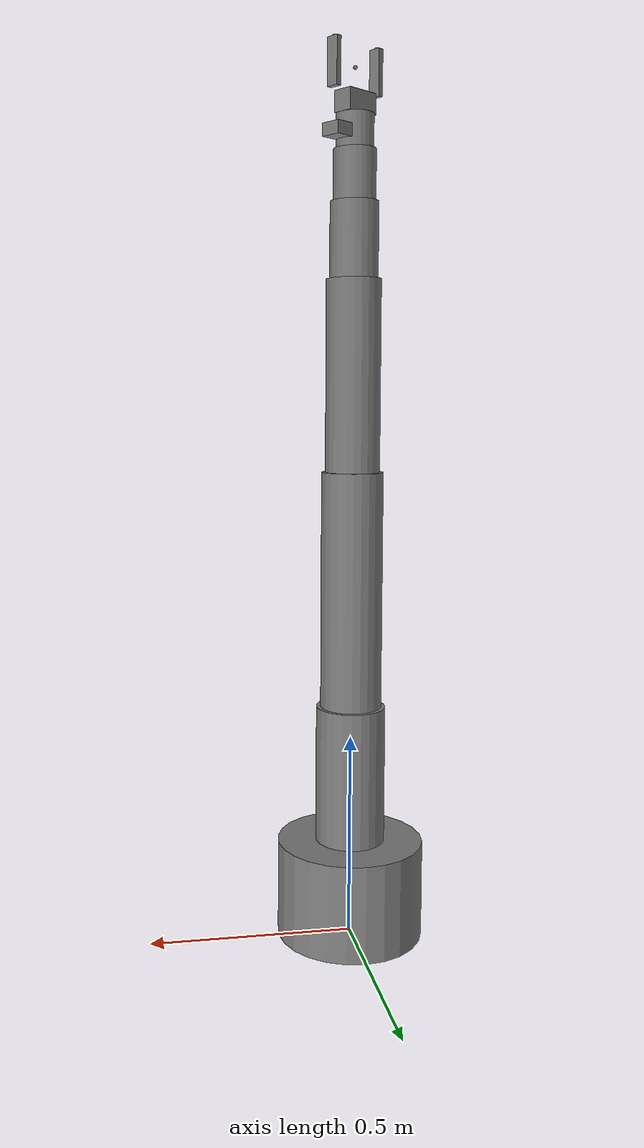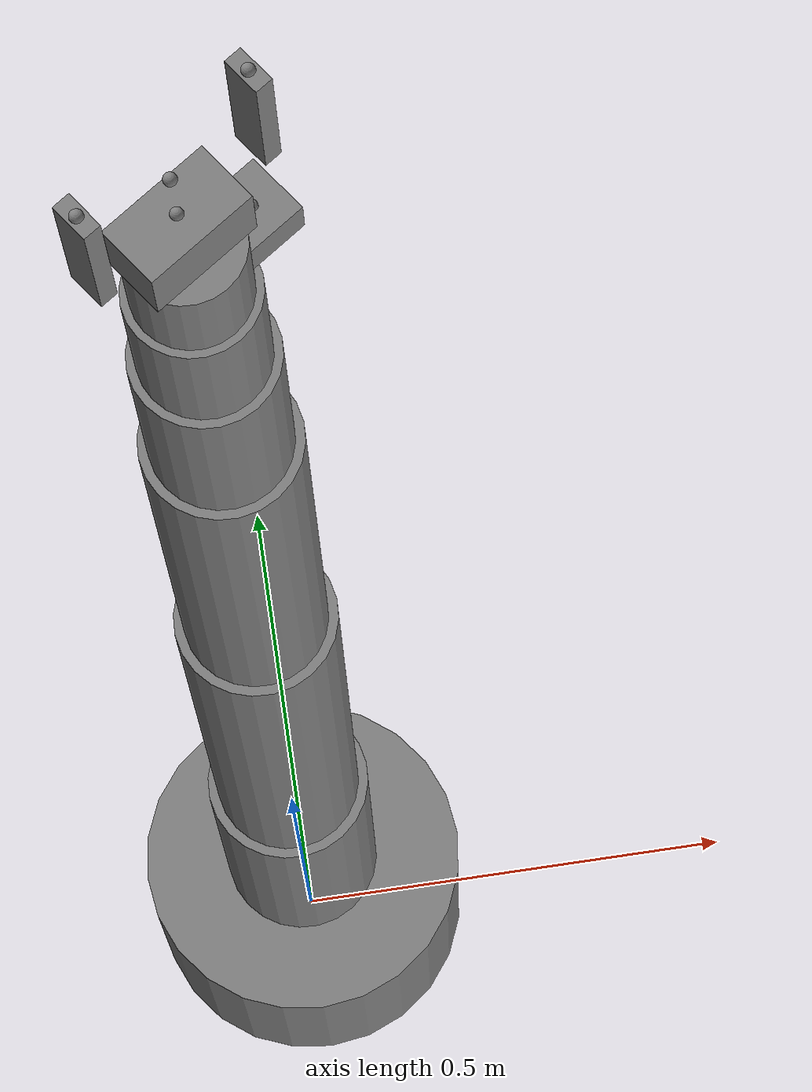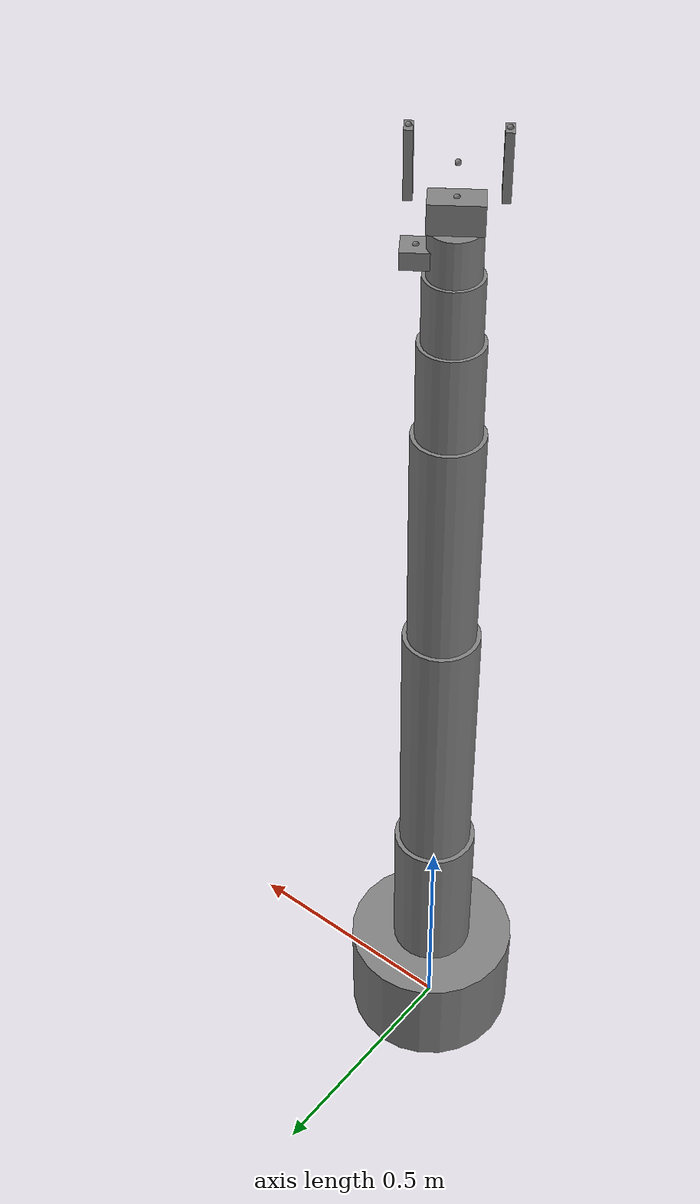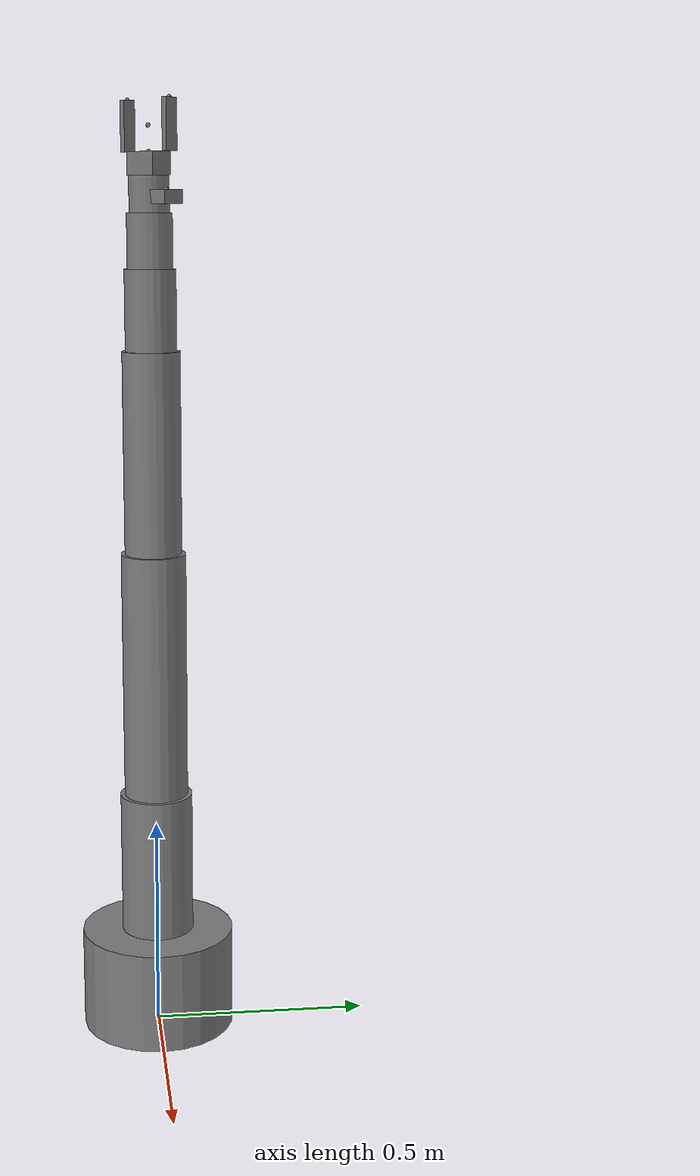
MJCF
<mujoco model="structural_body">
  <compiler angle="radian"/>

  <worldbody>
    <body name="body_0000">
      <inertial pos="0 0 0.12" quat="0.5 0.5 -0.5 0.5" mass="26" diaginertia="0.4212 0.3354 0.3354"/>
      <geom size="0.18 0.12" pos="0 0 0.12" type="cylinder"/>
      <site name="robot_base" pos="0 0 0"/>
      <body name="body_0001" pos="0 0 0.24" quat="0.953717 0 0 0.300706">
        <inertial pos="0 0 0.17" mass="6.94559" diaginertia="0.0794547 0.0794547 0.0250909"/>
        <joint name="axis_0000" pos="0 0 0" axis="0 0 1" range="-2.85 2.85" actuatorfrcrange="-420 420"/>
        <geom size="0.085 0.17" pos="0 0 0.17" type="cylinder"/>
        <body name="body_0002" pos="0 0 0.34">
          <inertial pos="0 0 0.29" mass="9.17537" diaginertia="0.27005 0.27005 0.0256683"/>
          <joint name="axis_0001" pos="0 0 0" axis="0 1 0" range="-2.85 2.85" actuatorfrcrange="-420 420"/>
          <geom size="0.0748 0.29" pos="0 0 0.29" type="cylinder"/>
          <body name="body_0003" pos="0 0 0.58">
            <inertial pos="0 0 0.23" mass="5.63532" diaginertia="0.105474 0.105474 0.0122084"/>
            <joint name="axis_0002" pos="0 0 0" axis="0 1 0" range="-2.85 2.85" actuatorfrcrange="-420 420"/>
            <geom size="0.065824 0.23" pos="0 0 0.23" type="cylinder"/>
            <body name="body_0004" pos="0 0 0.46">
              <inertial pos="0 0 0.09" mass="1.70765" diaginertia="0.00604308 0.00604308 0.00286486"/>
              <joint name="axis_0003" pos="0 0 0" axis="1 0 0" range="-2.85 2.85" actuatorfrcrange="-420 420"/>
              <geom size="0.057925 0.09" pos="0 0 0.09" type="cylinder"/>
              <body name="body_0005" pos="0 0 0.18">
                <inertial pos="0 0 0.06" mass="0.881603" diaginertia="0.0016306 0.0016306 0.00114536"/>
                <joint name="axis_0004" pos="0 0 0" axis="0 1 0" range="-2.85 2.85" actuatorfrcrange="-420 420"/>
                <geom size="0.050974 0.06" pos="0 0 0.06" type="cylinder"/>
                <body name="body_0006" pos="0 0 0.12">
                  <inertial pos="0 0 0.04" mass="0.455142" diaginertia="0.0004717 0.0004717 0.00045791"/>
                  <joint name="axis_0005" pos="0 0 0" axis="0 0 1" range="-2.85 2.85" actuatorfrcrange="-420 420"/>
                  <geom size="0.044857 0.04" pos="0 0 0.04" type="cylinder"/>
                  <site name="body_0006_wrist" pos="0 0 0"/>
                  <body name="body_0007" pos="0 0 0.08">
                    <inertial pos="0 0 0.025" quat="0.5 0.5 0.5 0.5" mass="0.35" diaginertia="0.00030917 0.00030917 0.00014583"/>
                    <geom size="0.045 0.025 0.025" pos="0 0 0.025" type="box"/>
                    <site name="body_0007_grasp_point" pos="0 0 0.105"/>
                    <site name="body_0007_grasp_center" pos="0 0 0.05"/>
                    <site name="body_0007_wrist" pos="0 0 0"/>
                    <body name="body_0008" pos="0.073 0 0.05">
                      <inertial pos="0 0 0.055" mass="0.06" diaginertia="6.5e-05 6.148e-05 5.48e-06"/>
                      <joint name="axis_0007" pos="0 0 0" axis="-1 0 0" type="slide" range="0 0.065" actuatorfrcrange="-110 110"/>
                      <geom size="0.007 0.015 0.055" pos="0 0 0.055" type="box"/>
                      <site name="body_0007_tip" pos="0 0 0.11"/>
                      <site name="body_0007_contact_0" pos="0 0 0.11"/>
                    </body>
                    <body name="body_0009" pos="-0.073 0 0.05">
                      <inertial pos="0 0 0.055" mass="0.06" diaginertia="6.5e-05 6.148e-05 5.48e-06"/>
                      <joint name="axis_0008" pos="0 0 0" axis="1 0 0" type="slide" range="0 0.065" actuatorfrcrange="-110 110"/>
                      <geom size="0.007 0.015 0.055" pos="0 0 0.055" type="box"/>
                      <site name="body_0007_contact_1" pos="0 0 0.11"/>
                    </body>
                  </body>
                  <body name="body_0010" pos="0.06 0 0.02">
                    <inertial pos="0 0 0.015" quat="0.5 0.5 -0.5 0.5" mass="0.2" diaginertia="8.333e-05 5.667e-05 5.667e-05"/>
                    <geom size="0.025 0.025 0.015" pos="0 0 0.015" type="box"/>
                    <site name="body_0006_tip" pos="0 0 0.03"/>
                  </body>
                </body>
              </body>
            </body>
          </body>
        </body>
      </body>
    </body>
  </worldbody>

  <actuator>
    <general name="axis_0000_motor" joint="axis_0000" ctrllimited="true" ctrlrange="-420 420" forcelimited="true" forcerange="-420 420"/>
    <general name="axis_0001_motor" joint="axis_0001" ctrllimited="true" ctrlrange="-420 420" forcelimited="true" forcerange="-420 420"/>
    <general name="axis_0002_motor" joint="axis_0002" ctrllimited="true" ctrlrange="-420 420" forcelimited="true" forcerange="-420 420"/>
    <general name="axis_0003_motor" joint="axis_0003" ctrllimited="true" ctrlrange="-420 420" forcelimited="true" forcerange="-420 420"/>
    <general name="axis_0004_motor" joint="axis_0004" ctrllimited="true" ctrlrange="-420 420" forcelimited="true" forcerange="-420 420"/>
    <general name="axis_0005_motor" joint="axis_0005" ctrllimited="true" ctrlrange="-420 420" forcelimited="true" forcerange="-420 420"/>
    <general name="axis_0007_motor" joint="axis_0007" ctrllimited="true" ctrlrange="-110 110" forcelimited="true" forcerange="-110 110"/>
    <general name="axis_0008_motor" joint="axis_0008" ctrllimited="true" ctrlrange="-110 110" forcelimited="true" forcerange="-110 110"/>
  </actuator>
</mujoco>
